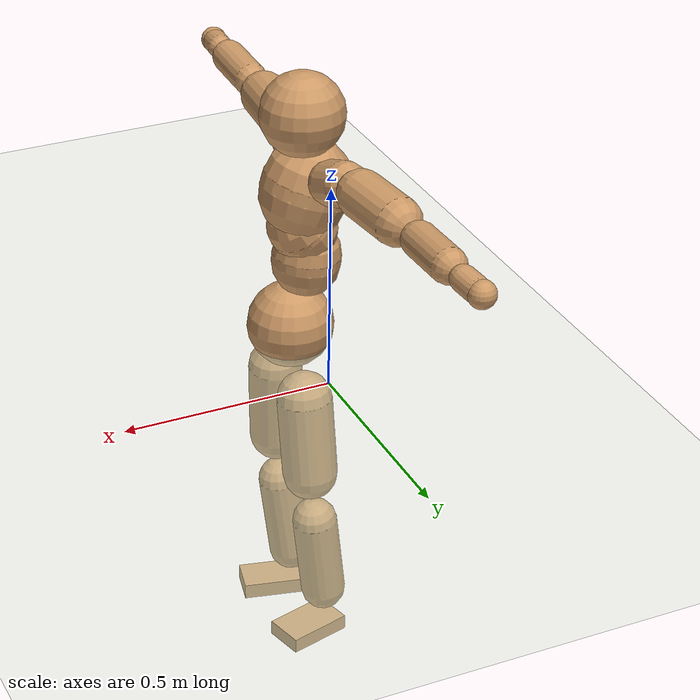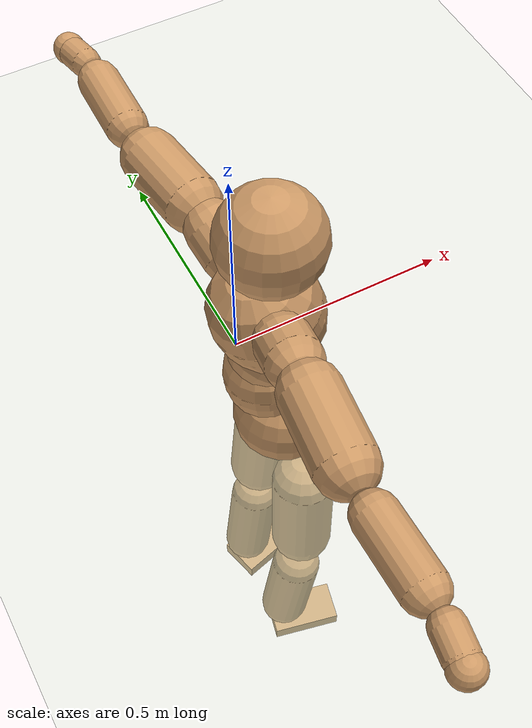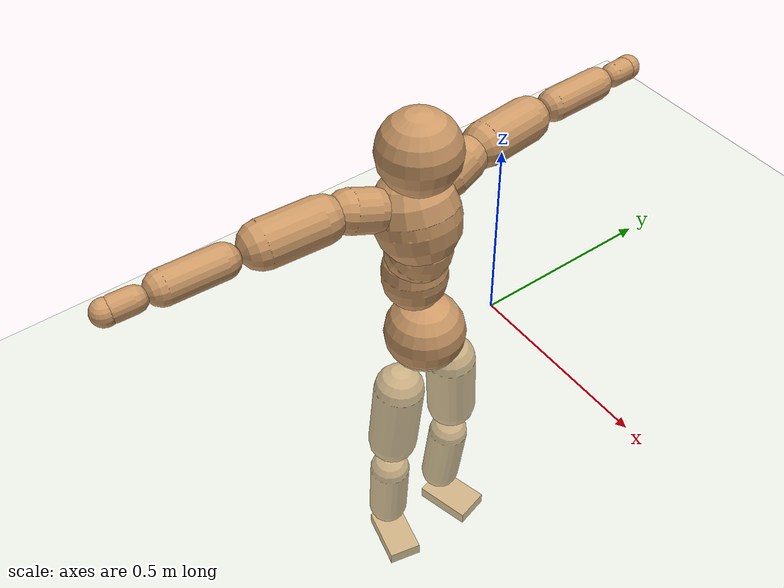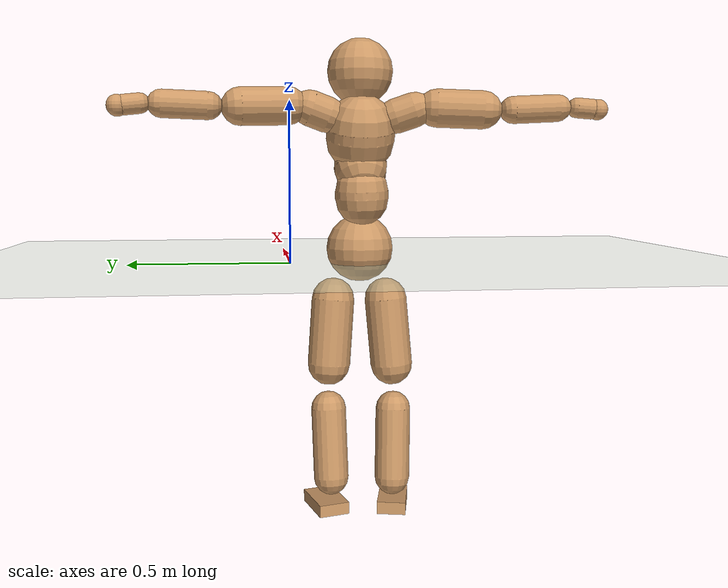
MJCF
<mujoco model="humanoid">
  <compiler coordinate="local"/>
  <default>
    <joint damping="0.0" armature="0.01" stiffness="0.0" limited="true"/>
    <geom conaffinity="1" condim="3" contype="7" margin="0.001" rgba="0.8 0.6 .4 1"/>
  </default>
  <asset>
    <texture type="skybox" builtin="gradient" rgb1=".4 .5 .6" rgb2="0 0 0" width="100" height="100"/>
    <texture builtin="flat" height="1278" mark="cross" markrgb="1 1 1" name="texgeom" random="0.01" rgb1="0.8 0.6 0.4" rgb2="0.8 0.6 0.4" type="cube" width="127"/>
    <texture builtin="checker" height="100" name="texplane" rgb1="0 0 0" rgb2="0.8 0.8 0.8" type="2d" width="100"/>
    <material name="MatPlane" reflectance="0.5" shininess="1" specular="1" texrepeat="60 60" texture="texplane"/>
    <material name="geom" texture="texgeom" texuniform="true"/>
  </asset>
  <worldbody>
    <light cutoff="100" diffuse="1 1 1" dir="-0 0 -1.3" directional="true" exponent="1" pos="0 0 1.3" specular=".1 .1 .1"/>
    <geom conaffinity="1" condim="3" name="floor" pos="0 0 0" rgba="0.8 0.9 0.8 1" size="100 100 .2" type="plane" material="MatPlane"/>
    <body name="Pelvis" pos="0.0001 -0.2174 0.0459">
      <freejoint name="Pelvis"/>
      <geom type="sphere" contype="1" conaffinity="1" density="500" size="0.1045" pos="0.0000 0.0000 0.0000" name="Pelvis"/>
      <body name="L_Hip" pos="0.0042 0.0797 -0.0917">
        <joint name="L_Hip_x" type="hinge" pos="0 0 0" axis="1 0 0" stiffness="800" damping="80" armature="0.02" range="-180.0000 180.0000"/>
        <joint name="L_Hip_y" type="hinge" pos="0 0 0" axis="0 1 0" stiffness="800" damping="80" armature="0.02" range="-180.0000 180.0000"/>
        <joint name="L_Hip_z" type="hinge" pos="0 0 0" axis="0 0 1" stiffness="800" damping="80" armature="0.02" range="-180.0000 180.0000"/>
        <geom type="capsule" contype="1" conaffinity="1" density="500" fromto="-0.0031 0.0049 -0.0690 -0.0125 0.0194 -0.2762" size="0.0668" name="L_Hip"/>
        <body name="L_Knee" pos="-0.0157 0.0243 -0.3452">
          <joint name="L_Knee_x" type="hinge" pos="0 0 0" axis="1 0 0" stiffness="800" damping="80" armature="0.02" range="-180.0000 180.0000"/>
          <joint name="L_Knee_y" type="hinge" pos="0 0 0" axis="0 1 0" stiffness="800" damping="80" armature="0.02" range="-180.0000 180.0000"/>
          <joint name="L_Knee_z" type="hinge" pos="0 0 0" axis="0 0 1" stiffness="800" damping="80" armature="0.02" range="-180.0000 180.0000"/>
          <geom type="capsule" contype="1" conaffinity="1" density="500" fromto="-0.0090 -0.0018 -0.0725 -0.0361 -0.0072 -0.2900" size="0.055" name="L_Knee"/>
          <body name="L_Ankle" pos="-0.0451 -0.009 -0.3625">
            <joint name="L_Ankle_x" type="hinge" pos="0 0 0" axis="1 0 0" stiffness="800" damping="80" armature="0.02" range="-180.0000 180.0000"/>
            <joint name="L_Ankle_y" type="hinge" pos="0 0 0" axis="0 1 0" stiffness="800" damping="80" armature="0.02" range="-180.0000 180.0000"/>
            <joint name="L_Ankle_z" type="hinge" pos="0 0 0" axis="0 0 1" stiffness="800" damping="80" armature="0.02" range="-180.0000 180.0000"/>
            <geom type="box" contype="1" conaffinity="1" density="500" pos="0.0545 0.0143 -0.0265" size="0.0794 0.0488 0.019" quat="0.9918 0.0000 0.0000 0.1280" name="L_Ankle"/>
            <body name="L_Toe" pos="0.1091 0.0286 -0.0529">
              <joint name="L_Toe_x" type="hinge" pos="0 0 0" axis="1 0 0" stiffness="500" damping="50" armature="0.02" range="-180.0000 180.0000"/>
              <joint name="L_Toe_y" type="hinge" pos="0 0 0" axis="0 1 0" stiffness="500" damping="50" armature="0.02" range="-180.0000 180.0000"/>
              <joint name="L_Toe_z" type="hinge" pos="0 0 0" axis="0 0 1" stiffness="500" damping="50" armature="0.02" range="-180.0000 180.0000"/>
              <geom type="box" contype="1" conaffinity="1" density="500" pos="0.0000 0.0000 0.0269" size="0.001 0.0024 0.001" quat="0.9910 0.0000 0.0000 0.1342" name="L_Toe"/>
            </body>
          </body>
        </body>
      </body>
      <body name="R_Hip" pos="0.006 -0.0777 -0.0922">
        <joint name="R_Hip_x" type="hinge" pos="0 0 0" axis="1 0 0" stiffness="800" damping="80" armature="0.02" range="-180.0000 180.0000"/>
        <joint name="R_Hip_y" type="hinge" pos="0 0 0" axis="0 1 0" stiffness="800" damping="80" armature="0.02" range="-180.0000 180.0000"/>
        <joint name="R_Hip_z" type="hinge" pos="0 0 0" axis="0 0 1" stiffness="800" damping="80" armature="0.02" range="-180.0000 180.0000"/>
        <geom type="capsule" contype="1" conaffinity="1" density="500" fromto="-0.0034 -0.0060 -0.0703 -0.0135 -0.0241 -0.2812" size="0.0661" name="R_Hip"/>
        <body name="R_Knee" pos="-0.0169 -0.0302 -0.3515">
          <joint name="R_Knee_x" type="hinge" pos="0 0 0" axis="1 0 0" stiffness="800" damping="80" armature="0.02" range="-180.0000 180.0000"/>
          <joint name="R_Knee_y" type="hinge" pos="0 0 0" axis="0 1 0" stiffness="800" damping="80" armature="0.02" range="-180.0000 180.0000"/>
          <joint name="R_Knee_z" type="hinge" pos="0 0 0" axis="0 0 1" stiffness="800" damping="80" armature="0.02" range="-180.0000 180.0000"/>
          <geom type="capsule" contype="1" conaffinity="1" density="500" fromto="-0.0088 0.0022 -0.0729 -0.0354 0.0087 -0.2915" size="0.055" name="R_Knee"/>
          <body name="R_Ankle" pos="-0.0442 0.0109 -0.3644">
            <joint name="R_Ankle_x" type="hinge" pos="0 0 0" axis="1 0 0" stiffness="800" damping="80" armature="0.02" range="-180.0000 180.0000"/>
            <joint name="R_Ankle_y" type="hinge" pos="0 0 0" axis="0 1 0" stiffness="800" damping="80" armature="0.02" range="-180.0000 180.0000"/>
            <joint name="R_Ankle_z" type="hinge" pos="0 0 0" axis="0 0 1" stiffness="800" damping="80" armature="0.02" range="-180.0000 180.0000"/>
            <geom type="box" contype="1" conaffinity="1" density="500" pos="0.0563 -0.0128 -0.0226" size="0.0796 0.0453 0.0198" quat="0.9938 0.0000 0.0000 -0.1114" name="R_Ankle"/>
            <body name="R_Toe" pos="0.1127 -0.0256 -0.0453">
              <joint name="R_Toe_x" type="hinge" pos="0 0 0" axis="1 0 0" stiffness="500" damping="50" armature="0.02" range="-180.0000 180.0000"/>
              <joint name="R_Toe_y" type="hinge" pos="0 0 0" axis="0 1 0" stiffness="500" damping="50" armature="0.02" range="-180.0000 180.0000"/>
              <joint name="R_Toe_z" type="hinge" pos="0 0 0" axis="0 0 1" stiffness="500" damping="50" armature="0.02" range="-180.0000 180.0000"/>
              <geom type="box" contype="1" conaffinity="1" density="500" pos="0.0000 0.0000 0.0240" size="0.0009 0.0023 0.0011" quat="0.9949 0.0000 0.0000 -0.1012" name="R_Toe"/>
            </body>
          </body>
        </body>
      </body>
      <body name="Torso" pos="-0.0367 -0.0026 0.1068">
        <joint name="Torso_x" type="hinge" pos="0 0 0" axis="1 0 0" stiffness="1000" damping="100" armature="0.02" range="-180.0000 180.0000"/>
        <joint name="Torso_y" type="hinge" pos="0 0 0" axis="0 1 0" stiffness="1000" damping="100" armature="0.02" range="-180.0000 180.0000"/>
        <joint name="Torso_z" type="hinge" pos="0 0 0" axis="0 0 1" stiffness="1000" damping="100" armature="0.02" range="-180.0000 180.0000"/>
        <geom type="capsule" contype="1" conaffinity="1" density="500" fromto="-0.0049 0.0019 0.0733 -0.0033 0.0013 0.0489" size="0.0823" name="Torso"/>
        <body name="Spine" pos="-0.0082 0.0031 0.1222">
          <joint name="Spine_x" type="hinge" pos="0 0 0" axis="1 0 0" stiffness="1000" damping="100" armature="0.02" range="-180.0000 180.0000"/>
          <joint name="Spine_y" type="hinge" pos="0 0 0" axis="0 1 0" stiffness="1000" damping="100" armature="0.02" range="-180.0000 180.0000"/>
          <joint name="Spine_z" type="hinge" pos="0 0 0" axis="0 0 1" stiffness="1000" damping="100" armature="0.02" range="-180.0000 180.0000"/>
          <geom type="capsule" contype="1" conaffinity="1" density="500" fromto="0.0196 0.0012 0.0293 0.0130 0.0008 0.0195" size="0.0818" name="Spine"/>
          <body name="Chest" pos="0.0326 0.0021 0.0488">
            <joint name="Chest_x" type="hinge" pos="0 0 0" axis="1 0 0" stiffness="1000" damping="100" armature="0.02" range="-180.0000 180.0000"/>
            <joint name="Chest_y" type="hinge" pos="0 0 0" axis="0 1 0" stiffness="1000" damping="100" armature="0.02" range="-180.0000 180.0000"/>
            <joint name="Chest_z" type="hinge" pos="0 0 0" axis="0 0 1" stiffness="1000" damping="100" armature="0.02" range="-180.0000 180.0000"/>
            <geom type="capsule" contype="1" conaffinity="1" density="500" fromto="-0.0288 -0.0001 0.0903 -0.0192 -0.0001 0.0602" size="0.1057" name="Chest"/>
            <body name="Neck" pos="-0.06 0.0004 0.2081">
              <joint name="Neck_x" type="hinge" pos="0 0 0" axis="1 0 0" stiffness="500" damping="50" armature="0.02" range="-180.0000 180.0000"/>
              <joint name="Neck_y" type="hinge" pos="0 0 0" axis="0 1 0" stiffness="500" damping="50" armature="0.02" range="-180.0000 180.0000"/>
              <joint name="Neck_z" type="hinge" pos="0 0 0" axis="0 0 1" stiffness="500" damping="50" armature="0.02" range="-180.0000 180.0000"/>
              <geom type="capsule" contype="1" conaffinity="1" density="500" fromto="0.0090 -0.0000 0.0106 0.0358 -0.0001 0.0424" size="0.0425" name="Neck"/>
              <body name="Head" pos="0.0448 -0.0001 0.053">
                <joint name="Head_x" type="hinge" pos="0 0 0" axis="1 0 0" stiffness="500" damping="50" armature="0.02" range="-180.0000 180.0000"/>
                <joint name="Head_y" type="hinge" pos="0 0 0" axis="0 1 0" stiffness="500" damping="50" armature="0.02" range="-180.0000 180.0000"/>
                <joint name="Head_z" type="hinge" pos="0 0 0" axis="0 0 1" stiffness="500" damping="50" armature="0.02" range="-180.0000 180.0000"/>
                <geom type="sphere" contype="1" conaffinity="1" density="500" size="0.1004" pos="0.0000 0.0000 0.0000" name="Head"/>
              </body>
            </body>
            <body name="L_Thorax" pos="-0.0388 0.0844 0.1232">
              <joint name="L_Thorax_x" type="hinge" pos="0 0 0" axis="1 0 0" stiffness="500" damping="50" armature="0.02" range="-180.0000 180.0000"/>
              <joint name="L_Thorax_y" type="hinge" pos="0 0 0" axis="0 1 0" stiffness="500" damping="50" armature="0.02" range="-180.0000 180.0000"/>
              <joint name="L_Thorax_z" type="hinge" pos="0 0 0" axis="0 0 1" stiffness="500" damping="50" armature="0.02" range="-180.0000 180.0000"/>
              <geom type="capsule" contype="1" conaffinity="1" density="500" fromto="-0.0024 0.0180 0.0065 -0.0096 0.0719 0.0260" size="0.054" name="L_Thorax"/>
              <body name="L_Shoulder" pos="-0.012 0.0899 0.0325">
                <joint name="L_Shoulder_x" type="hinge" pos="0 0 0" axis="1 0 0" stiffness="500" damping="50" armature="0.02" range="-720.0000 720.0000"/>
                <joint name="L_Shoulder_y" type="hinge" pos="0 0 0" axis="0 1 0" stiffness="500" damping="50" armature="0.02" range="-720.0000 720.0000"/>
                <joint name="L_Shoulder_z" type="hinge" pos="0 0 0" axis="0 0 1" stiffness="500" damping="50" armature="0.02" range="-720.0000 720.0000"/>
                <geom type="capsule" contype="1" conaffinity="1" density="500" fromto="-0.0061 0.0472 -0.0013 -0.0242 0.1886 -0.0052" size="0.057" name="L_Shoulder"/>
                <body name="L_Elbow" pos="-0.0303 0.2358 -0.0065">
                  <joint name="L_Elbow_x" type="hinge" pos="0 0 0" axis="1 0 0" stiffness="500" damping="50" armature="0.02" range="-720.0000 720.0000"/>
                  <joint name="L_Elbow_y" type="hinge" pos="0 0 0" axis="0 1 0" stiffness="500" damping="50" armature="0.02" range="-720.0000 720.0000"/>
                  <joint name="L_Elbow_z" type="hinge" pos="0 0 0" axis="0 0 1" stiffness="500" damping="50" armature="0.02" range="-720.0000 720.0000"/>
                  <geom type="capsule" contype="1" conaffinity="1" density="500" fromto="0.0004 0.0449 0.0018 0.0016 0.1797 0.0070" size="0.0415" name="L_Elbow"/>
                  <body name="L_Wrist" pos="0.002 0.2247 0.0088">
                    <joint name="L_Wrist_x" type="hinge" pos="0 0 0" axis="1 0 0" stiffness="300" damping="30" armature="0.02" range="-180.0000 180.0000"/>
                    <joint name="L_Wrist_y" type="hinge" pos="0 0 0" axis="0 1 0" stiffness="300" damping="30" armature="0.02" range="-180.0000 180.0000"/>
                    <joint name="L_Wrist_z" type="hinge" pos="0 0 0" axis="0 0 1" stiffness="300" damping="30" armature="0.02" range="-180.0000 180.0000"/>
                    <geom type="capsule" contype="1" conaffinity="1" density="500" fromto="-0.0026 0.0156 -0.0019 -0.0102 0.0625 -0.0074" size="0.0302" name="L_Wrist"/>
                    <body name="L_Hand" pos="-0.0128 0.0781 -0.0093">
                      <joint name="L_Hand_x" type="hinge" pos="0 0 0" axis="1 0 0" stiffness="300" damping="30" armature="0.02" range="-180.0000 180.0000"/>
                      <joint name="L_Hand_y" type="hinge" pos="0 0 0" axis="0 1 0" stiffness="300" damping="30" armature="0.02" range="-180.0000 180.0000"/>
                      <joint name="L_Hand_z" type="hinge" pos="0 0 0" axis="0 0 1" stiffness="300" damping="30" armature="0.02" range="-180.0000 180.0000"/>
                      <geom type="sphere" contype="1" conaffinity="1" density="500" size="0.0318" pos="0.0000 0.0000 0.0000" name="L_Hand"/>
                    </body>
                  </body>
                </body>
              </body>
            </body>
            <body name="R_Thorax" pos="-0.0453 -0.0854 0.1203">
              <joint name="R_Thorax_x" type="hinge" pos="0 0 0" axis="1 0 0" stiffness="500" damping="50" armature="0.02" range="-180.0000 180.0000"/>
              <joint name="R_Thorax_y" type="hinge" pos="0 0 0" axis="0 1 0" stiffness="500" damping="50" armature="0.02" range="-180.0000 180.0000"/>
              <joint name="R_Thorax_z" type="hinge" pos="0 0 0" axis="0 0 1" stiffness="500" damping="50" armature="0.02" range="-180.0000 180.0000"/>
              <geom type="capsule" contype="1" conaffinity="1" density="500" fromto="-0.0030 -0.0190 0.0065 -0.0121 -0.0759 0.0259" size="0.0532" name="R_Thorax"/>
              <body name="R_Shoulder" pos="-0.0151 -0.0949 0.0323">
                <joint name="R_Shoulder_x" type="hinge" pos="0 0 0" axis="1 0 0" stiffness="500" damping="50" armature="0.02" range="-720.0000 720.0000"/>
                <joint name="R_Shoulder_y" type="hinge" pos="0 0 0" axis="0 1 0" stiffness="500" damping="50" armature="0.02" range="-720.0000 720.0000"/>
                <joint name="R_Shoulder_z" type="hinge" pos="0 0 0" axis="0 0 1" stiffness="500" damping="50" armature="0.02" range="-720.0000 720.0000"/>
                <geom type="capsule" contype="1" conaffinity="1" density="500" fromto="-0.0048 -0.0467 -0.0018 -0.0191 -0.1869 -0.0071" size="0.0578" name="R_Shoulder"/>
                <body name="R_Elbow" pos="-0.0239 -0.2337 -0.0089">
                  <joint name="R_Elbow_x" type="hinge" pos="0 0 0" axis="1 0 0" stiffness="500" damping="50" armature="0.02" range="-720.0000 720.0000"/>
                  <joint name="R_Elbow_y" type="hinge" pos="0 0 0" axis="0 1 0" stiffness="500" damping="50" armature="0.02" range="-720.0000 720.0000"/>
                  <joint name="R_Elbow_z" type="hinge" pos="0 0 0" axis="0 0 1" stiffness="500" damping="50" armature="0.02" range="-720.0000 720.0000"/>
                  <geom type="capsule" contype="1" conaffinity="1" density="500" fromto="0.0001 -0.0463 0.0023 0.0004 -0.1851 0.0092" size="0.0416" name="R_Elbow"/>
                  <body name="R_Wrist" pos="0.0005 -0.2313 0.0116">
                    <joint name="R_Wrist_x" type="hinge" pos="0 0 0" axis="1 0 0" stiffness="300" damping="30" armature="0.02" range="-180.0000 180.0000"/>
                    <joint name="R_Wrist_y" type="hinge" pos="0 0 0" axis="0 1 0" stiffness="300" damping="30" armature="0.02" range="-180.0000 180.0000"/>
                    <joint name="R_Wrist_z" type="hinge" pos="0 0 0" axis="0 0 1" stiffness="300" damping="30" armature="0.02" range="-180.0000 180.0000"/>
                    <geom type="capsule" contype="1" conaffinity="1" density="500" fromto="-0.0020 -0.0157 -0.0014 -0.0082 -0.0626 -0.0055" size="0.0308" name="R_Wrist"/>
                    <body name="R_Hand" pos="-0.0102 -0.0783 -0.0069">
                      <joint name="R_Hand_x" type="hinge" pos="0 0 0" axis="1 0 0" stiffness="300" damping="30" armature="0.02" range="-180.0000 180.0000"/>
                      <joint name="R_Hand_y" type="hinge" pos="0 0 0" axis="0 1 0" stiffness="300" damping="30" armature="0.02" range="-180.0000 180.0000"/>
                      <joint name="R_Hand_z" type="hinge" pos="0 0 0" axis="0 0 1" stiffness="300" damping="30" armature="0.02" range="-180.0000 180.0000"/>
                      <geom type="sphere" contype="1" conaffinity="1" density="500" size="0.0318" pos="0.0000 0.0000 0.0000" name="R_Hand"/>
                    </body>
                  </body>
                </body>
              </body>
            </body>
          </body>
        </body>
      </body>
    </body>
  </worldbody>
  <actuator>
    <motor name="L_Hip_x" joint="L_Hip_x" gear="500"/>
    <motor name="L_Hip_y" joint="L_Hip_y" gear="500"/>
    <motor name="L_Hip_z" joint="L_Hip_z" gear="500"/>
    <motor name="L_Knee_x" joint="L_Knee_x" gear="500"/>
    <motor name="L_Knee_y" joint="L_Knee_y" gear="500"/>
    <motor name="L_Knee_z" joint="L_Knee_z" gear="500"/>
    <motor name="L_Ankle_x" joint="L_Ankle_x" gear="500"/>
    <motor name="L_Ankle_y" joint="L_Ankle_y" gear="500"/>
    <motor name="L_Ankle_z" joint="L_Ankle_z" gear="500"/>
    <motor name="L_Toe_x" joint="L_Toe_x" gear="500"/>
    <motor name="L_Toe_y" joint="L_Toe_y" gear="500"/>
    <motor name="L_Toe_z" joint="L_Toe_z" gear="500"/>
    <motor name="R_Hip_x" joint="R_Hip_x" gear="500"/>
    <motor name="R_Hip_y" joint="R_Hip_y" gear="500"/>
    <motor name="R_Hip_z" joint="R_Hip_z" gear="500"/>
    <motor name="R_Knee_x" joint="R_Knee_x" gear="500"/>
    <motor name="R_Knee_y" joint="R_Knee_y" gear="500"/>
    <motor name="R_Knee_z" joint="R_Knee_z" gear="500"/>
    <motor name="R_Ankle_x" joint="R_Ankle_x" gear="500"/>
    <motor name="R_Ankle_y" joint="R_Ankle_y" gear="500"/>
    <motor name="R_Ankle_z" joint="R_Ankle_z" gear="500"/>
    <motor name="R_Toe_x" joint="R_Toe_x" gear="500"/>
    <motor name="R_Toe_y" joint="R_Toe_y" gear="500"/>
    <motor name="R_Toe_z" joint="R_Toe_z" gear="500"/>
    <motor name="Torso_x" joint="Torso_x" gear="500"/>
    <motor name="Torso_y" joint="Torso_y" gear="500"/>
    <motor name="Torso_z" joint="Torso_z" gear="500"/>
    <motor name="Spine_x" joint="Spine_x" gear="500"/>
    <motor name="Spine_y" joint="Spine_y" gear="500"/>
    <motor name="Spine_z" joint="Spine_z" gear="500"/>
    <motor name="Chest_x" joint="Chest_x" gear="500"/>
    <motor name="Chest_y" joint="Chest_y" gear="500"/>
    <motor name="Chest_z" joint="Chest_z" gear="500"/>
    <motor name="Neck_x" joint="Neck_x" gear="500"/>
    <motor name="Neck_y" joint="Neck_y" gear="500"/>
    <motor name="Neck_z" joint="Neck_z" gear="500"/>
    <motor name="Head_x" joint="Head_x" gear="500"/>
    <motor name="Head_y" joint="Head_y" gear="500"/>
    <motor name="Head_z" joint="Head_z" gear="500"/>
    <motor name="L_Thorax_x" joint="L_Thorax_x" gear="500"/>
    <motor name="L_Thorax_y" joint="L_Thorax_y" gear="500"/>
    <motor name="L_Thorax_z" joint="L_Thorax_z" gear="500"/>
    <motor name="L_Shoulder_x" joint="L_Shoulder_x" gear="500"/>
    <motor name="L_Shoulder_y" joint="L_Shoulder_y" gear="500"/>
    <motor name="L_Shoulder_z" joint="L_Shoulder_z" gear="500"/>
    <motor name="L_Elbow_x" joint="L_Elbow_x" gear="500"/>
    <motor name="L_Elbow_y" joint="L_Elbow_y" gear="500"/>
    <motor name="L_Elbow_z" joint="L_Elbow_z" gear="500"/>
    <motor name="L_Wrist_x" joint="L_Wrist_x" gear="500"/>
    <motor name="L_Wrist_y" joint="L_Wrist_y" gear="500"/>
    <motor name="L_Wrist_z" joint="L_Wrist_z" gear="500"/>
    <motor name="L_Hand_x" joint="L_Hand_x" gear="500"/>
    <motor name="L_Hand_y" joint="L_Hand_y" gear="500"/>
    <motor name="L_Hand_z" joint="L_Hand_z" gear="500"/>
    <motor name="R_Thorax_x" joint="R_Thorax_x" gear="500"/>
    <motor name="R_Thorax_y" joint="R_Thorax_y" gear="500"/>
    <motor name="R_Thorax_z" joint="R_Thorax_z" gear="500"/>
    <motor name="R_Shoulder_x" joint="R_Shoulder_x" gear="500"/>
    <motor name="R_Shoulder_y" joint="R_Shoulder_y" gear="500"/>
    <motor name="R_Shoulder_z" joint="R_Shoulder_z" gear="500"/>
    <motor name="R_Elbow_x" joint="R_Elbow_x" gear="500"/>
    <motor name="R_Elbow_y" joint="R_Elbow_y" gear="500"/>
    <motor name="R_Elbow_z" joint="R_Elbow_z" gear="500"/>
    <motor name="R_Wrist_x" joint="R_Wrist_x" gear="500"/>
    <motor name="R_Wrist_y" joint="R_Wrist_y" gear="500"/>
    <motor name="R_Wrist_z" joint="R_Wrist_z" gear="500"/>
    <motor name="R_Hand_x" joint="R_Hand_x" gear="500"/>
    <motor name="R_Hand_y" joint="R_Hand_y" gear="500"/>
    <motor name="R_Hand_z" joint="R_Hand_z" gear="500"/>
  </actuator>
  <contact>
    <exclude body1="Torso" body2="Chest"/>
    <exclude body1="Head" body2="Chest"/>
    <exclude body1="R_Knee" body2="R_Toe"/>
    <exclude body1="R_Knee" body2="L_Ankle"/>
    <exclude body1="R_Knee" body2="L_Toe"/>
    <exclude body1="L_Knee" body2="L_Toe"/>
    <exclude body1="L_Knee" body2="R_Ankle"/>
    <exclude body1="L_Knee" body2="R_Toe"/>
    <exclude body1="L_Shoulder" body2="Chest"/>
    <exclude body1="R_Shoulder" body2="Chest"/>
  </contact>
  <sensor/>
  <size njmax="700" nconmax="700"/>
</mujoco>
